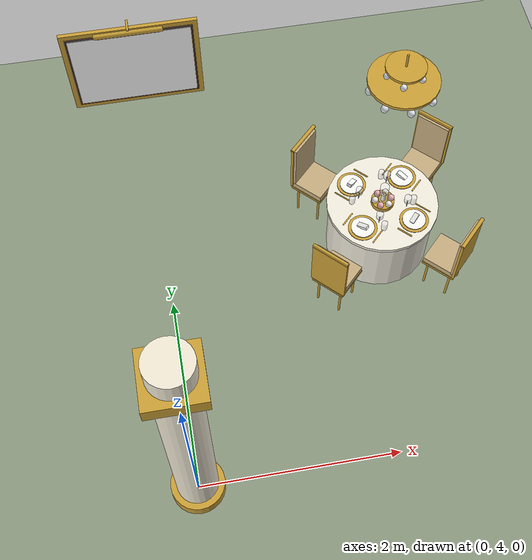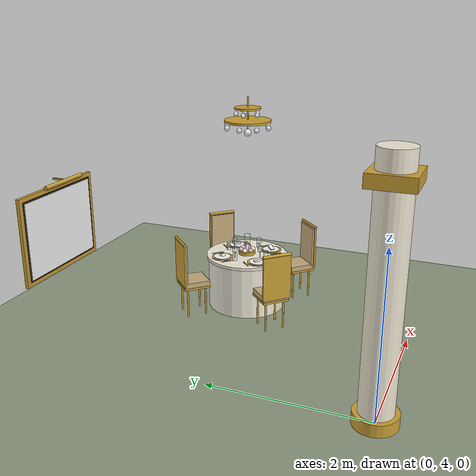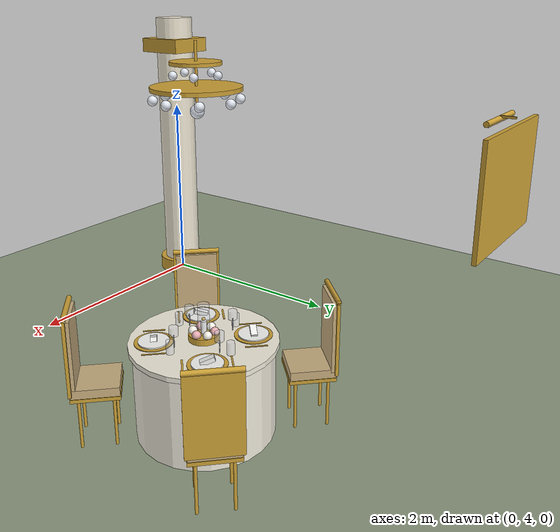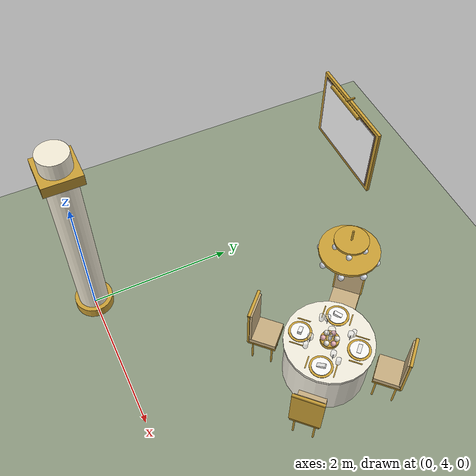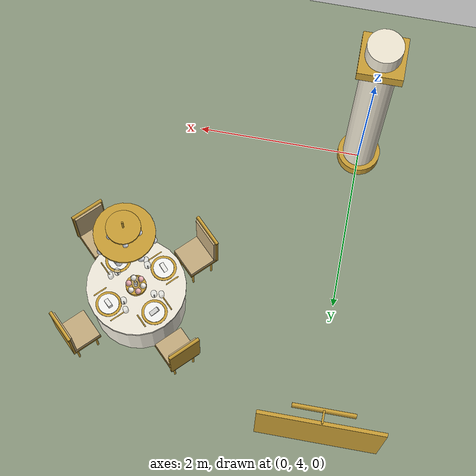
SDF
<sdf version="1.9">
 <world name="dar_tunibot">
  <model name="ground_plane">
   <static>true</static>
   <link name="link">
    <collision name="collision">
     <geometry><plane><normal>0 0 1</normal><size>60 60</size></plane></geometry>
    </collision>
    <visual name="visual">
     <geometry><plane><normal>0 0 1</normal><size>60 60</size></plane></geometry>
     <material><ambient>0.55 0.6 0.5 1</ambient><diffuse>0.55 0.6 0.5 1</diffuse></material>
    </visual>
   </link>
  </model>
  <model name="column_4">
   <static>true</static>
   <pose>0 4 0 0 0 0</pose>
   <link name="link">
    <visual name="base_v">
     <pose>0.000 0.000 0.075 0.0000 0.0000 0.0000</pose>
     <geometry><cylinder><radius>0.260</radius><length>0.150</length></cylinder></geometry>
     <material>
      <ambient>0.8 0.63 0.21 1</ambient>
      <diffuse>0.8 0.63 0.21 1</diffuse>
      <specular>0.1 0.1 0.1 1</specular>
     </material>
    </visual>
    <collision name="base_c">
     <pose>0.000 0.000 0.075 0.0000 0.0000 0.0000</pose>
     <geometry><cylinder><radius>0.260</radius><length>0.150</length></cylinder></geometry>
    </collision>
    <visual name="shaft_v">
     <pose>0.000 0.000 1.500 0.0000 0.0000 0.0000</pose>
     <geometry><cylinder><radius>0.200</radius><length>3.000</length></cylinder></geometry>
     <material>
      <ambient>0.95 0.92 0.84 1</ambient>
      <diffuse>0.95 0.92 0.84 1</diffuse>
      <specular>0.1 0.1 0.1 1</specular>
     </material>
    </visual>
    <collision name="shaft_c">
     <pose>0.000 0.000 1.500 0.0000 0.0000 0.0000</pose>
     <geometry><cylinder><radius>0.200</radius><length>3.000</length></cylinder></geometry>
    </collision>
    <visual name="capital_v">
     <pose>0.000 0.000 2.700 0.0000 0.0000 0.0000</pose>
     <geometry><box><size>0.500 0.500 0.150</size></box></geometry>
     <material>
      <ambient>0.8 0.63 0.21 1</ambient>
      <diffuse>0.8 0.63 0.21 1</diffuse>
      <specular>0.1 0.1 0.1 1</specular>
     </material>
    </visual>
   </link>
  </model>
  <model name="table_2">
   <static>true</static>
   <pose>2.3 6.4 0 0 0 0</pose>
   <link name="link">
    <visual name="cloth_v">
     <pose>0.000 0.000 0.370 0.0000 0.0000 0.0000</pose>
     <geometry><cylinder><radius>0.550</radius><length>0.740</length></cylinder></geometry>
     <material>
      <ambient>0.95 0.93 0.87 1</ambient>
      <diffuse>0.95 0.93 0.87 1</diffuse>
      <specular>0.1 0.1 0.1 1</specular>
     </material>
    </visual>
    <collision name="cloth_c">
     <pose>0.000 0.000 0.370 0.0000 0.0000 0.0000</pose>
     <geometry><cylinder><radius>0.550</radius><length>0.740</length></cylinder></geometry>
    </collision>
    <visual name="drape_v">
     <pose>0.000 0.000 0.750 0.0000 0.0000 0.0000</pose>
     <geometry><cylinder><radius>0.580</radius><length>0.040</length></cylinder></geometry>
     <material>
      <ambient>0.95 0.93 0.87 1</ambient>
      <diffuse>0.95 0.93 0.87 1</diffuse>
      <specular>0.1 0.1 0.1 1</specular>
     </material>
    </visual>
    <visual name="bowl_v">
     <pose>0.000 0.000 0.795 0.0000 0.0000 0.0000</pose>
     <geometry><cylinder><radius>0.120</radius><length>0.050</length></cylinder></geometry>
     <material>
      <ambient>0.8 0.63 0.21 1</ambient>
      <diffuse>0.8 0.63 0.21 1</diffuse>
      <specular>0.1 0.1 0.1 1</specular>
     </material>
    </visual>
    <visual name="bowl_foot_v">
     <pose>0.000 0.000 0.775 0.0000 0.0000 0.0000</pose>
     <geometry><cylinder><radius>0.060</radius><length>0.020</length></cylinder></geometry>
     <material>
      <ambient>0.8 0.63 0.21 1</ambient>
      <diffuse>0.8 0.63 0.21 1</diffuse>
      <specular>0.1 0.1 0.1 1</specular>
     </material>
    </visual>
    <visual name="candle_v">
     <pose>0.000 0.000 0.870 0.0000 0.0000 0.0000</pose>
     <geometry><cylinder><radius>0.022</radius><length>0.100</length></cylinder></geometry>
     <material>
      <ambient>0.98 0.98 0.97 1</ambient>
      <diffuse>0.98 0.98 0.97 1</diffuse>
      <specular>0.1 0.1 0.1 1</specular>
     </material>
    </visual>
    <visual name="flame_v">
     <pose>0.000 0.000 0.935 0.0000 0.0000 0.0000</pose>
     <geometry><sphere><radius>0.014</radius></sphere></geometry>
     <material>
      <ambient>0.8 0.63 0.21 1</ambient>
      <diffuse>0.8 0.63 0.21 1</diffuse>
      <specular>0.1 0.1 0.1 1</specular>
      <emissive>1.0 0.6 0.2 1</emissive>
     </material>
    </visual>
    <visual name="hurricane_v">
     <pose>0.000 0.000 0.940 0.0000 0.0000 0.0000</pose>
     <geometry><cylinder><radius>0.045</radius><length>0.240</length></cylinder></geometry>
     <transparency>0.75</transparency>
     <material>
      <ambient>0.9 0.92 0.96 1</ambient>
      <diffuse>0.9 0.92 0.96 1</diffuse>
      <specular>0.1 0.1 0.1 1</specular>
     </material>
    </visual>
    <visual name="rose0_v">
     <pose>0.085 0.000 0.835 0.0000 0.0000 0.0000</pose>
     <geometry><sphere><radius>0.035</radius></sphere></geometry>
     <material>
      <ambient>0.93 0.7 0.72 1</ambient>
      <diffuse>0.93 0.7 0.72 1</diffuse>
      <specular>0.1 0.1 0.1 1</specular>
     </material>
    </visual>
    <visual name="rose1_v">
     <pose>0.043 0.074 0.835 0.0000 0.0000 0.0000</pose>
     <geometry><sphere><radius>0.035</radius></sphere></geometry>
     <material>
      <ambient>0.97 0.95 0.91 1</ambient>
      <diffuse>0.97 0.95 0.91 1</diffuse>
      <specular>0.1 0.1 0.1 1</specular>
     </material>
    </visual>
    <visual name="rose2_v">
     <pose>-0.042 0.074 0.835 0.0000 0.0000 0.0000</pose>
     <geometry><sphere><radius>0.035</radius></sphere></geometry>
     <material>
      <ambient>0.93 0.7 0.72 1</ambient>
      <diffuse>0.93 0.7 0.72 1</diffuse>
      <specular>0.1 0.1 0.1 1</specular>
     </material>
    </visual>
    <visual name="rose3_v">
     <pose>-0.085 0.000 0.835 0.0000 0.0000 0.0000</pose>
     <geometry><sphere><radius>0.035</radius></sphere></geometry>
     <material>
      <ambient>0.97 0.95 0.91 1</ambient>
      <diffuse>0.97 0.95 0.91 1</diffuse>
      <specular>0.1 0.1 0.1 1</specular>
     </material>
    </visual>
    <visual name="rose4_v">
     <pose>-0.043 -0.074 0.835 0.0000 0.0000 0.0000</pose>
     <geometry><sphere><radius>0.035</radius></sphere></geometry>
     <material>
      <ambient>0.93 0.7 0.72 1</ambient>
      <diffuse>0.93 0.7 0.72 1</diffuse>
      <specular>0.1 0.1 0.1 1</specular>
     </material>
    </visual>
    <visual name="rose5_v">
     <pose>0.043 -0.074 0.835 0.0000 0.0000 0.0000</pose>
     <geometry><sphere><radius>0.035</radius></sphere></geometry>
     <material>
      <ambient>0.97 0.95 0.91 1</ambient>
      <diffuse>0.97 0.95 0.91 1</diffuse>
      <specular>0.1 0.1 0.1 1</specular>
     </material>
    </visual>
    <collision name="seat0_c">
     <pose>0.580 0.580 0.225 0.0000 0.0000 0.0000</pose>
     <geometry><box><size>0.400 0.400 0.450</size></box></geometry>
    </collision>
    <visual name="seat_frame0_v">
     <pose>0.580 0.580 0.430 0.0000 0.0000 0.7854</pose>
     <geometry><box><size>0.370 0.370 0.030</size></box></geometry>
     <material>
      <ambient>0.8 0.63 0.21 1</ambient>
      <diffuse>0.8 0.63 0.21 1</diffuse>
      <specular>0.1 0.1 0.1 1</specular>
     </material>
    </visual>
    <visual name="cushion0_v">
     <pose>0.580 0.580 0.480 0.0000 0.0000 0.7854</pose>
     <geometry><box><size>0.360 0.360 0.070</size></box></geometry>
     <material>
      <ambient>0.78 0.68 0.5 1</ambient>
      <diffuse>0.78 0.68 0.5 1</diffuse>
      <specular>0.1 0.1 0.1 1</specular>
     </material>
    </visual>
    <visual name="back_frame0_v">
     <pose>0.707 0.707 0.780 0.0000 0.0000 0.7854</pose>
     <geometry><box><size>0.025 0.400 0.620</size></box></geometry>
     <material>
      <ambient>0.8 0.63 0.21 1</ambient>
      <diffuse>0.8 0.63 0.21 1</diffuse>
      <specular>0.1 0.1 0.1 1</specular>
     </material>
    </visual>
    <visual name="back0_v">
     <pose>0.697 0.697 0.780 0.0000 0.0000 0.7854</pose>
     <geometry><box><size>0.050 0.360 0.580</size></box></geometry>
     <material>
      <ambient>0.78 0.68 0.5 1</ambient>
      <diffuse>0.78 0.68 0.5 1</diffuse>
      <specular>0.1 0.1 0.1 1</specular>
     </material>
    </visual>
    <visual name="back_top0_v">
     <pose>0.707 0.707 1.090 1.5708 0.0000 0.7854</pose>
     <geometry><cylinder><radius>0.020</radius><length>0.400</length></cylinder></geometry>
     <material>
      <ambient>0.8 0.63 0.21 1</ambient>
      <diffuse>0.8 0.63 0.21 1</diffuse>
      <specular>0.1 0.1 0.1 1</specular>
     </material>
    </visual>
    <visual name="leg0_0_v">
     <pose>0.580 0.396 0.210 0.0000 0.0000 0.7854</pose>
     <geometry><cylinder><radius>0.012</radius><length>0.420</length></cylinder></geometry>
     <material>
      <ambient>0.8 0.63 0.21 1</ambient>
      <diffuse>0.8 0.63 0.21 1</diffuse>
      <specular>0.1 0.1 0.1 1</specular>
     </material>
    </visual>
    <visual name="leg0_1_v">
     <pose>0.396 0.580 0.210 0.0000 0.0000 0.7854</pose>
     <geometry><cylinder><radius>0.012</radius><length>0.420</length></cylinder></geometry>
     <material>
      <ambient>0.8 0.63 0.21 1</ambient>
      <diffuse>0.8 0.63 0.21 1</diffuse>
      <specular>0.1 0.1 0.1 1</specular>
     </material>
    </visual>
    <visual name="leg0_2_v">
     <pose>0.764 0.580 0.210 0.0000 0.0000 0.7854</pose>
     <geometry><cylinder><radius>0.012</radius><length>0.420</length></cylinder></geometry>
     <material>
      <ambient>0.8 0.63 0.21 1</ambient>
      <diffuse>0.8 0.63 0.21 1</diffuse>
      <specular>0.1 0.1 0.1 1</specular>
     </material>
    </visual>
    <visual name="leg0_3_v">
     <pose>0.580 0.764 0.210 0.0000 0.0000 0.7854</pose>
     <geometry><cylinder><radius>0.012</radius><length>0.420</length></cylinder></geometry>
     <material>
      <ambient>0.8 0.63 0.21 1</ambient>
      <diffuse>0.8 0.63 0.21 1</diffuse>
      <specular>0.1 0.1 0.1 1</specular>
     </material>
    </visual>
    <visual name="charger0_v">
     <pose>0.269 0.269 0.773 0.0000 0.0000 0.7854</pose>
     <geometry><cylinder><radius>0.150</radius><length>0.006</length></cylinder></geometry>
     <material>
      <ambient>0.8 0.63 0.21 1</ambient>
      <diffuse>0.8 0.63 0.21 1</diffuse>
      <specular>0.1 0.1 0.1 1</specular>
     </material>
    </visual>
    <visual name="plate0_v">
     <pose>0.269 0.269 0.781 0.0000 0.0000 0.7854</pose>
     <geometry><cylinder><radius>0.120</radius><length>0.010</length></cylinder></geometry>
     <material>
      <ambient>0.98 0.98 0.97 1</ambient>
      <diffuse>0.98 0.98 0.97 1</diffuse>
      <specular>0.1 0.1 0.1 1</specular>
     </material>
    </visual>
    <visual name="napkin0_v">
     <pose>0.269 0.269 0.803 0.3500 0.0000 0.7854</pose>
     <geometry><box><size>0.050 0.110 0.035</size></box></geometry>
     <material>
      <ambient>0.98 0.98 0.97 1</ambient>
      <diffuse>0.98 0.98 0.97 1</diffuse>
      <specular>0.1 0.1 0.1 1</specular>
     </material>
    </visual>
    <visual name="fork0_v">
     <pose>0.396 0.141 0.772 0.0000 0.0000 0.7854</pose>
     <geometry><box><size>0.170 0.014 0.004</size></box></geometry>
     <material>
      <ambient>0.8 0.63 0.21 1</ambient>
      <diffuse>0.8 0.63 0.21 1</diffuse>
      <specular>0.1 0.1 0.1 1</specular>
     </material>
    </visual>
    <visual name="knife0_v">
     <pose>0.141 0.396 0.772 0.0000 0.0000 0.7854</pose>
     <geometry><box><size>0.180 0.012 0.004</size></box></geometry>
     <material>
      <ambient>0.8 0.63 0.21 1</ambient>
      <diffuse>0.8 0.63 0.21 1</diffuse>
      <specular>0.1 0.1 0.1 1</specular>
     </material>
    </visual>
    <visual name="wine_stem0_v">
     <pose>0.092 0.233 0.820 0.0000 0.0000 0.7854</pose>
     <geometry><cylinder><radius>0.004</radius><length>0.100</length></cylinder></geometry>
     <material>
      <ambient>0.9 0.92 0.96 1</ambient>
      <diffuse>0.9 0.92 0.96 1</diffuse>
      <specular>0.1 0.1 0.1 1</specular>
     </material>
    </visual>
    <visual name="wine_bowl0_v">
     <pose>0.092 0.233 0.905 0.0000 0.0000 0.7854</pose>
     <geometry><cylinder><radius>0.035</radius><length>0.070</length></cylinder></geometry>
     <transparency>0.6</transparency>
     <material>
      <ambient>0.9 0.92 0.96 1</ambient>
      <diffuse>0.9 0.92 0.96 1</diffuse>
      <specular>0.1 0.1 0.1 1</specular>
     </material>
    </visual>
    <visual name="water0_v">
     <pose>0.057 0.311 0.820 0.0000 0.0000 0.7854</pose>
     <geometry><cylinder><radius>0.030</radius><length>0.100</length></cylinder></geometry>
     <transparency>0.6</transparency>
     <material>
      <ambient>0.9 0.92 0.96 1</ambient>
      <diffuse>0.9 0.92 0.96 1</diffuse>
      <specular>0.1 0.1 0.1 1</specular>
     </material>
    </visual>
    <collision name="seat1_c">
     <pose>-0.580 0.580 0.225 0.0000 0.0000 0.0000</pose>
     <geometry><box><size>0.400 0.400 0.450</size></box></geometry>
    </collision>
    <visual name="seat_frame1_v">
     <pose>-0.580 0.580 0.430 0.0000 0.0000 2.3562</pose>
     <geometry><box><size>0.370 0.370 0.030</size></box></geometry>
     <material>
      <ambient>0.8 0.63 0.21 1</ambient>
      <diffuse>0.8 0.63 0.21 1</diffuse>
      <specular>0.1 0.1 0.1 1</specular>
     </material>
    </visual>
    <visual name="cushion1_v">
     <pose>-0.580 0.580 0.480 0.0000 0.0000 2.3562</pose>
     <geometry><box><size>0.360 0.360 0.070</size></box></geometry>
     <material>
      <ambient>0.78 0.68 0.5 1</ambient>
      <diffuse>0.78 0.68 0.5 1</diffuse>
      <specular>0.1 0.1 0.1 1</specular>
     </material>
    </visual>
    <visual name="back_frame1_v">
     <pose>-0.707 0.707 0.780 0.0000 0.0000 2.3562</pose>
     <geometry><box><size>0.025 0.400 0.620</size></box></geometry>
     <material>
      <ambient>0.8 0.63 0.21 1</ambient>
      <diffuse>0.8 0.63 0.21 1</diffuse>
      <specular>0.1 0.1 0.1 1</specular>
     </material>
    </visual>
    <visual name="back1_v">
     <pose>-0.697 0.697 0.780 0.0000 0.0000 2.3562</pose>
     <geometry><box><size>0.050 0.360 0.580</size></box></geometry>
     <material>
      <ambient>0.78 0.68 0.5 1</ambient>
      <diffuse>0.78 0.68 0.5 1</diffuse>
      <specular>0.1 0.1 0.1 1</specular>
     </material>
    </visual>
    <visual name="back_top1_v">
     <pose>-0.707 0.707 1.090 1.5708 0.0000 2.3562</pose>
     <geometry><cylinder><radius>0.020</radius><length>0.400</length></cylinder></geometry>
     <material>
      <ambient>0.8 0.63 0.21 1</ambient>
      <diffuse>0.8 0.63 0.21 1</diffuse>
      <specular>0.1 0.1 0.1 1</specular>
     </material>
    </visual>
    <visual name="leg1_0_v">
     <pose>-0.396 0.580 0.210 0.0000 0.0000 2.3562</pose>
     <geometry><cylinder><radius>0.012</radius><length>0.420</length></cylinder></geometry>
     <material>
      <ambient>0.8 0.63 0.21 1</ambient>
      <diffuse>0.8 0.63 0.21 1</diffuse>
      <specular>0.1 0.1 0.1 1</specular>
     </material>
    </visual>
    <visual name="leg1_1_v">
     <pose>-0.580 0.396 0.210 0.0000 0.0000 2.3562</pose>
     <geometry><cylinder><radius>0.012</radius><length>0.420</length></cylinder></geometry>
     <material>
      <ambient>0.8 0.63 0.21 1</ambient>
      <diffuse>0.8 0.63 0.21 1</diffuse>
      <specular>0.1 0.1 0.1 1</specular>
     </material>
    </visual>
    <visual name="leg1_2_v">
     <pose>-0.580 0.764 0.210 0.0000 0.0000 2.3562</pose>
     <geometry><cylinder><radius>0.012</radius><length>0.420</length></cylinder></geometry>
     <material>
      <ambient>0.8 0.63 0.21 1</ambient>
      <diffuse>0.8 0.63 0.21 1</diffuse>
      <specular>0.1 0.1 0.1 1</specular>
     </material>
    </visual>
    <visual name="leg1_3_v">
     <pose>-0.764 0.580 0.210 0.0000 0.0000 2.3562</pose>
     <geometry><cylinder><radius>0.012</radius><length>0.420</length></cylinder></geometry>
     <material>
      <ambient>0.8 0.63 0.21 1</ambient>
      <diffuse>0.8 0.63 0.21 1</diffuse>
      <specular>0.1 0.1 0.1 1</specular>
     </material>
    </visual>
    <visual name="charger1_v">
     <pose>-0.269 0.269 0.773 0.0000 0.0000 2.3562</pose>
     <geometry><cylinder><radius>0.150</radius><length>0.006</length></cylinder></geometry>
     <material>
      <ambient>0.8 0.63 0.21 1</ambient>
      <diffuse>0.8 0.63 0.21 1</diffuse>
      <specular>0.1 0.1 0.1 1</specular>
     </material>
    </visual>
    <visual name="plate1_v">
     <pose>-0.269 0.269 0.781 0.0000 0.0000 2.3562</pose>
     <geometry><cylinder><radius>0.120</radius><length>0.010</length></cylinder></geometry>
     <material>
      <ambient>0.98 0.98 0.97 1</ambient>
      <diffuse>0.98 0.98 0.97 1</diffuse>
      <specular>0.1 0.1 0.1 1</specular>
     </material>
    </visual>
    <visual name="napkin1_v">
     <pose>-0.269 0.269 0.803 0.3500 0.0000 2.3562</pose>
     <geometry><box><size>0.050 0.110 0.035</size></box></geometry>
     <material>
      <ambient>0.98 0.98 0.97 1</ambient>
      <diffuse>0.98 0.98 0.97 1</diffuse>
      <specular>0.1 0.1 0.1 1</specular>
     </material>
    </visual>
    <visual name="fork1_v">
     <pose>-0.141 0.396 0.772 0.0000 0.0000 2.3562</pose>
     <geometry><box><size>0.170 0.014 0.004</size></box></geometry>
     <material>
      <ambient>0.8 0.63 0.21 1</ambient>
      <diffuse>0.8 0.63 0.21 1</diffuse>
      <specular>0.1 0.1 0.1 1</specular>
     </material>
    </visual>
    <visual name="knife1_v">
     <pose>-0.396 0.141 0.772 0.0000 0.0000 2.3562</pose>
     <geometry><box><size>0.180 0.012 0.004</size></box></geometry>
     <material>
      <ambient>0.8 0.63 0.21 1</ambient>
      <diffuse>0.8 0.63 0.21 1</diffuse>
      <specular>0.1 0.1 0.1 1</specular>
     </material>
    </visual>
    <visual name="wine_stem1_v">
     <pose>-0.233 0.092 0.820 0.0000 0.0000 2.3562</pose>
     <geometry><cylinder><radius>0.004</radius><length>0.100</length></cylinder></geometry>
     <material>
      <ambient>0.9 0.92 0.96 1</ambient>
      <diffuse>0.9 0.92 0.96 1</diffuse>
      <specular>0.1 0.1 0.1 1</specular>
     </material>
    </visual>
    <visual name="wine_bowl1_v">
     <pose>-0.233 0.092 0.905 0.0000 0.0000 2.3562</pose>
     <geometry><cylinder><radius>0.035</radius><length>0.070</length></cylinder></geometry>
     <transparency>0.6</transparency>
     <material>
      <ambient>0.9 0.92 0.96 1</ambient>
      <diffuse>0.9 0.92 0.96 1</diffuse>
      <specular>0.1 0.1 0.1 1</specular>
     </material>
    </visual>
    <visual name="water1_v">
     <pose>-0.311 0.057 0.820 0.0000 0.0000 2.3562</pose>
     <geometry><cylinder><radius>0.030</radius><length>0.100</length></cylinder></geometry>
     <transparency>0.6</transparency>
     <material>
      <ambient>0.9 0.92 0.96 1</ambient>
      <diffuse>0.9 0.92 0.96 1</diffuse>
      <specular>0.1 0.1 0.1 1</specular>
     </material>
    </visual>
    <collision name="seat2_c">
     <pose>-0.580 -0.580 0.225 0.0000 0.0000 0.0000</pose>
     <geometry><box><size>0.400 0.400 0.450</size></box></geometry>
    </collision>
    <visual name="seat_frame2_v">
     <pose>-0.580 -0.580 0.430 0.0000 0.0000 3.9270</pose>
     <geometry><box><size>0.370 0.370 0.030</size></box></geometry>
     <material>
      <ambient>0.8 0.63 0.21 1</ambient>
      <diffuse>0.8 0.63 0.21 1</diffuse>
      <specular>0.1 0.1 0.1 1</specular>
     </material>
    </visual>
    <visual name="cushion2_v">
     <pose>-0.580 -0.580 0.480 0.0000 0.0000 3.9270</pose>
     <geometry><box><size>0.360 0.360 0.070</size></box></geometry>
     <material>
      <ambient>0.78 0.68 0.5 1</ambient>
      <diffuse>0.78 0.68 0.5 1</diffuse>
      <specular>0.1 0.1 0.1 1</specular>
     </material>
    </visual>
    <visual name="back_frame2_v">
     <pose>-0.707 -0.707 0.780 0.0000 0.0000 3.9270</pose>
     <geometry><box><size>0.025 0.400 0.620</size></box></geometry>
     <material>
      <ambient>0.8 0.63 0.21 1</ambient>
      <diffuse>0.8 0.63 0.21 1</diffuse>
      <specular>0.1 0.1 0.1 1</specular>
     </material>
    </visual>
    <visual name="back2_v">
     <pose>-0.697 -0.697 0.780 0.0000 0.0000 3.9270</pose>
     <geometry><box><size>0.050 0.360 0.580</size></box></geometry>
     <material>
      <ambient>0.78 0.68 0.5 1</ambient>
      <diffuse>0.78 0.68 0.5 1</diffuse>
      <specular>0.1 0.1 0.1 1</specular>
     </material>
    </visual>
    <visual name="back_top2_v">
     <pose>-0.707 -0.707 1.090 1.5708 0.0000 3.9270</pose>
     <geometry><cylinder><radius>0.020</radius><length>0.400</length></cylinder></geometry>
     <material>
      <ambient>0.8 0.63 0.21 1</ambient>
      <diffuse>0.8 0.63 0.21 1</diffuse>
      <specular>0.1 0.1 0.1 1</specular>
     </material>
    </visual>
    <visual name="leg2_0_v">
     <pose>-0.580 -0.396 0.210 0.0000 0.0000 3.9270</pose>
     <geometry><cylinder><radius>0.012</radius><length>0.420</length></cylinder></geometry>
     <material>
      <ambient>0.8 0.63 0.21 1</ambient>
      <diffuse>0.8 0.63 0.21 1</diffuse>
      <specular>0.1 0.1 0.1 1</specular>
     </material>
    </visual>
    <visual name="leg2_1_v">
     <pose>-0.396 -0.580 0.210 0.0000 0.0000 3.9270</pose>
     <geometry><cylinder><radius>0.012</radius><length>0.420</length></cylinder></geometry>
     <material>
      <ambient>0.8 0.63 0.21 1</ambient>
      <diffuse>0.8 0.63 0.21 1</diffuse>
      <specular>0.1 0.1 0.1 1</specular>
     </material>
    </visual>
    <visual name="leg2_2_v">
     <pose>-0.764 -0.580 0.210 0.0000 0.0000 3.9270</pose>
     <geometry><cylinder><radius>0.012</radius><length>0.420</length></cylinder></geometry>
     <material>
      <ambient>0.8 0.63 0.21 1</ambient>
      <diffuse>0.8 0.63 0.21 1</diffuse>
      <specular>0.1 0.1 0.1 1</specular>
     </material>
    </visual>
    <visual name="leg2_3_v">
     <pose>-0.580 -0.764 0.210 0.0000 0.0000 3.9270</pose>
     <geometry><cylinder><radius>0.012</radius><length>0.420</length></cylinder></geometry>
     <material>
      <ambient>0.8 0.63 0.21 1</ambient>
      <diffuse>0.8 0.63 0.21 1</diffuse>
      <specular>0.1 0.1 0.1 1</specular>
     </material>
    </visual>
    <visual name="charger2_v">
     <pose>-0.269 -0.269 0.773 0.0000 0.0000 3.9270</pose>
     <geometry><cylinder><radius>0.150</radius><length>0.006</length></cylinder></geometry>
     <material>
      <ambient>0.8 0.63 0.21 1</ambient>
      <diffuse>0.8 0.63 0.21 1</diffuse>
      <specular>0.1 0.1 0.1 1</specular>
     </material>
    </visual>
    <visual name="plate2_v">
     <pose>-0.269 -0.269 0.781 0.0000 0.0000 3.9270</pose>
     <geometry><cylinder><radius>0.120</radius><length>0.010</length></cylinder></geometry>
     <material>
      <ambient>0.98 0.98 0.97 1</ambient>
      <diffuse>0.98 0.98 0.97 1</diffuse>
      <specular>0.1 0.1 0.1 1</specular>
     </material>
    </visual>
    <visual name="napkin2_v">
     <pose>-0.269 -0.269 0.803 0.3500 0.0000 3.9270</pose>
     <geometry><box><size>0.050 0.110 0.035</size></box></geometry>
     <material>
      <ambient>0.98 0.98 0.97 1</ambient>
      <diffuse>0.98 0.98 0.97 1</diffuse>
      <specular>0.1 0.1 0.1 1</specular>
     </material>
    </visual>
    <visual name="fork2_v">
     <pose>-0.396 -0.141 0.772 0.0000 0.0000 3.9270</pose>
     <geometry><box><size>0.170 0.014 0.004</size></box></geometry>
     <material>
      <ambient>0.8 0.63 0.21 1</ambient>
      <diffuse>0.8 0.63 0.21 1</diffuse>
      <specular>0.1 0.1 0.1 1</specular>
     </material>
    </visual>
    <visual name="knife2_v">
     <pose>-0.141 -0.396 0.772 0.0000 0.0000 3.9270</pose>
     <geometry><box><size>0.180 0.012 0.004</size></box></geometry>
     <material>
      <ambient>0.8 0.63 0.21 1</ambient>
      <diffuse>0.8 0.63 0.21 1</diffuse>
      <specular>0.1 0.1 0.1 1</specular>
     </material>
    </visual>
    <visual name="wine_stem2_v">
     <pose>-0.092 -0.233 0.820 0.0000 0.0000 3.9270</pose>
     <geometry><cylinder><radius>0.004</radius><length>0.100</length></cylinder></geometry>
     <material>
      <ambient>0.9 0.92 0.96 1</ambient>
      <diffuse>0.9 0.92 0.96 1</diffuse>
      <specular>0.1 0.1 0.1 1</specular>
     </material>
    </visual>
    <visual name="wine_bowl2_v">
     <pose>-0.092 -0.233 0.905 0.0000 0.0000 3.9270</pose>
     <geometry><cylinder><radius>0.035</radius><length>0.070</length></cylinder></geometry>
     <transparency>0.6</transparency>
     <material>
      <ambient>0.9 0.92 0.96 1</ambient>
      <diffuse>0.9 0.92 0.96 1</diffuse>
      <specular>0.1 0.1 0.1 1</specular>
     </material>
    </visual>
    <visual name="water2_v">
     <pose>-0.057 -0.311 0.820 0.0000 0.0000 3.9270</pose>
     <geometry><cylinder><radius>0.030</radius><length>0.100</length></cylinder></geometry>
     <transparency>0.6</transparency>
     <material>
      <ambient>0.9 0.92 0.96 1</ambient>
      <diffuse>0.9 0.92 0.96 1</diffuse>
      <specular>0.1 0.1 0.1 1</specular>
     </material>
    </visual>
    <collision name="seat3_c">
     <pose>0.580 -0.580 0.225 0.0000 0.0000 0.0000</pose>
     <geometry><box><size>0.400 0.400 0.450</size></box></geometry>
    </collision>
    <visual name="seat_frame3_v">
     <pose>0.580 -0.580 0.430 0.0000 0.0000 5.4978</pose>
     <geometry><box><size>0.370 0.370 0.030</size></box></geometry>
     <material>
      <ambient>0.8 0.63 0.21 1</ambient>
      <diffuse>0.8 0.63 0.21 1</diffuse>
      <specular>0.1 0.1 0.1 1</specular>
     </material>
    </visual>
    <visual name="cushion3_v">
     <pose>0.580 -0.580 0.480 0.0000 0.0000 5.4978</pose>
     <geometry><box><size>0.360 0.360 0.070</size></box></geometry>
     <material>
      <ambient>0.78 0.68 0.5 1</ambient>
      <diffuse>0.78 0.68 0.5 1</diffuse>
      <specular>0.1 0.1 0.1 1</specular>
     </material>
    </visual>
    <visual name="back_frame3_v">
     <pose>0.707 -0.707 0.780 0.0000 0.0000 5.4978</pose>
     <geometry><box><size>0.025 0.400 0.620</size></box></geometry>
     <material>
      <ambient>0.8 0.63 0.21 1</ambient>
      <diffuse>0.8 0.63 0.21 1</diffuse>
      <specular>0.1 0.1 0.1 1</specular>
     </material>
    </visual>
    <visual name="back3_v">
     <pose>0.697 -0.697 0.780 0.0000 0.0000 5.4978</pose>
     <geometry><box><size>0.050 0.360 0.580</size></box></geometry>
     <material>
      <ambient>0.78 0.68 0.5 1</ambient>
      <diffuse>0.78 0.68 0.5 1</diffuse>
      <specular>0.1 0.1 0.1 1</specular>
     </material>
    </visual>
    <visual name="back_top3_v">
     <pose>0.707 -0.707 1.090 1.5708 0.0000 5.4978</pose>
     <geometry><cylinder><radius>0.020</radius><length>0.400</length></cylinder></geometry>
     <material>
      <ambient>0.8 0.63 0.21 1</ambient>
      <diffuse>0.8 0.63 0.21 1</diffuse>
      <specular>0.1 0.1 0.1 1</specular>
     </material>
    </visual>
    <visual name="leg3_0_v">
     <pose>0.396 -0.580 0.210 0.0000 0.0000 5.4978</pose>
     <geometry><cylinder><radius>0.012</radius><length>0.420</length></cylinder></geometry>
     <material>
      <ambient>0.8 0.63 0.21 1</ambient>
      <diffuse>0.8 0.63 0.21 1</diffuse>
      <specular>0.1 0.1 0.1 1</specular>
     </material>
    </visual>
    <visual name="leg3_1_v">
     <pose>0.580 -0.396 0.210 0.0000 0.0000 5.4978</pose>
     <geometry><cylinder><radius>0.012</radius><length>0.420</length></cylinder></geometry>
     <material>
      <ambient>0.8 0.63 0.21 1</ambient>
      <diffuse>0.8 0.63 0.21 1</diffuse>
      <specular>0.1 0.1 0.1 1</specular>
     </material>
    </visual>
    <visual name="leg3_2_v">
     <pose>0.580 -0.764 0.210 0.0000 0.0000 5.4978</pose>
     <geometry><cylinder><radius>0.012</radius><length>0.420</length></cylinder></geometry>
     <material>
      <ambient>0.8 0.63 0.21 1</ambient>
      <diffuse>0.8 0.63 0.21 1</diffuse>
      <specular>0.1 0.1 0.1 1</specular>
     </material>
    </visual>
    <visual name="leg3_3_v">
     <pose>0.764 -0.580 0.210 0.0000 0.0000 5.4978</pose>
     <geometry><cylinder><radius>0.012</radius><length>0.420</length></cylinder></geometry>
     <material>
      <ambient>0.8 0.63 0.21 1</ambient>
      <diffuse>0.8 0.63 0.21 1</diffuse>
      <specular>0.1 0.1 0.1 1</specular>
     </material>
    </visual>
    <visual name="charger3_v">
     <pose>0.269 -0.269 0.773 0.0000 0.0000 5.4978</pose>
     <geometry><cylinder><radius>0.150</radius><length>0.006</length></cylinder></geometry>
     <material>
      <ambient>0.8 0.63 0.21 1</ambient>
      <diffuse>0.8 0.63 0.21 1</diffuse>
      <specular>0.1 0.1 0.1 1</specular>
     </material>
    </visual>
    <visual name="plate3_v">
     <pose>0.269 -0.269 0.781 0.0000 0.0000 5.4978</pose>
     <geometry><cylinder><radius>0.120</radius><length>0.010</length></cylinder></geometry>
     <material>
      <ambient>0.98 0.98 0.97 1</ambient>
      <diffuse>0.98 0.98 0.97 1</diffuse>
      <specular>0.1 0.1 0.1 1</specular>
     </material>
    </visual>
    <visual name="napkin3_v">
     <pose>0.269 -0.269 0.803 0.3500 0.0000 5.4978</pose>
     <geometry><box><size>0.050 0.110 0.035</size></box></geometry>
     <material>
      <ambient>0.98 0.98 0.97 1</ambient>
      <diffuse>0.98 0.98 0.97 1</diffuse>
      <specular>0.1 0.1 0.1 1</specular>
     </material>
    </visual>
    <visual name="fork3_v">
     <pose>0.141 -0.396 0.772 0.0000 0.0000 5.4978</pose>
     <geometry><box><size>0.170 0.014 0.004</size></box></geometry>
     <material>
      <ambient>0.8 0.63 0.21 1</ambient>
      <diffuse>0.8 0.63 0.21 1</diffuse>
      <specular>0.1 0.1 0.1 1</specular>
     </material>
    </visual>
    <visual name="knife3_v">
     <pose>0.396 -0.141 0.772 0.0000 0.0000 5.4978</pose>
     <geometry><box><size>0.180 0.012 0.004</size></box></geometry>
     <material>
      <ambient>0.8 0.63 0.21 1</ambient>
      <diffuse>0.8 0.63 0.21 1</diffuse>
      <specular>0.1 0.1 0.1 1</specular>
     </material>
    </visual>
    <visual name="wine_stem3_v">
     <pose>0.233 -0.092 0.820 0.0000 0.0000 5.4978</pose>
     <geometry><cylinder><radius>0.004</radius><length>0.100</length></cylinder></geometry>
     <material>
      <ambient>0.9 0.92 0.96 1</ambient>
      <diffuse>0.9 0.92 0.96 1</diffuse>
      <specular>0.1 0.1 0.1 1</specular>
     </material>
    </visual>
    <visual name="wine_bowl3_v">
     <pose>0.233 -0.092 0.905 0.0000 0.0000 5.4978</pose>
     <geometry><cylinder><radius>0.035</radius><length>0.070</length></cylinder></geometry>
     <transparency>0.6</transparency>
     <material>
      <ambient>0.9 0.92 0.96 1</ambient>
      <diffuse>0.9 0.92 0.96 1</diffuse>
      <specular>0.1 0.1 0.1 1</specular>
     </material>
    </visual>
    <visual name="water3_v">
     <pose>0.311 -0.057 0.820 0.0000 0.0000 5.4978</pose>
     <geometry><cylinder><radius>0.030</radius><length>0.100</length></cylinder></geometry>
     <transparency>0.6</transparency>
     <material>
      <ambient>0.9 0.92 0.96 1</ambient>
      <diffuse>0.9 0.92 0.96 1</diffuse>
      <specular>0.1 0.1 0.1 1</specular>
     </material>
    </visual>
    <visual name="chand_rod_v">
     <pose>0.000 0.000 2.750 0.0000 0.0000 0.0000</pose>
     <geometry><cylinder><radius>0.010</radius><length>0.500</length></cylinder></geometry>
     <material>
      <ambient>0.8 0.63 0.21 1</ambient>
      <diffuse>0.8 0.63 0.21 1</diffuse>
      <specular>0.1 0.1 0.1 1</specular>
     </material>
    </visual>
    <visual name="chand_ring_v">
     <pose>0.000 0.000 2.680 0.0000 0.0000 0.0000</pose>
     <geometry><cylinder><radius>0.320</radius><length>0.030</length></cylinder></geometry>
     <material>
      <ambient>0.8 0.63 0.21 1</ambient>
      <diffuse>0.8 0.63 0.21 1</diffuse>
      <specular>0.1 0.1 0.1 1</specular>
     </material>
    </visual>
    <visual name="chand_ring_top_v">
     <pose>0.000 0.000 2.850 0.0000 0.0000 0.0000</pose>
     <geometry><cylinder><radius>0.180</radius><length>0.025</length></cylinder></geometry>
     <material>
      <ambient>0.8 0.63 0.21 1</ambient>
      <diffuse>0.8 0.63 0.21 1</diffuse>
      <specular>0.1 0.1 0.1 1</specular>
     </material>
    </visual>
    <visual name="chand_drop_v">
     <pose>0.000 0.000 2.520 0.0000 0.0000 0.0000</pose>
     <geometry><sphere><radius>0.050</radius></sphere></geometry>
     <material>
      <ambient>0.9 0.92 0.96 1</ambient>
      <diffuse>0.9 0.92 0.96 1</diffuse>
      <specular>0.1 0.1 0.1 1</specular>
      <emissive>0.55 0.52 0.45 1</emissive>
     </material>
    </visual>
    <visual name="crystal0_0_v">
     <pose>0.300 0.000 2.600 0.0000 0.0000 0.0000</pose>
     <geometry><sphere><radius>0.035</radius></sphere></geometry>
     <material>
      <ambient>0.9 0.92 0.96 1</ambient>
      <diffuse>0.9 0.92 0.96 1</diffuse>
      <specular>0.1 0.1 0.1 1</specular>
      <emissive>0.55 0.52 0.45 1</emissive>
     </material>
    </visual>
    <visual name="crystal0_1_v">
     <pose>0.212 0.212 2.600 0.0000 0.0000 0.0000</pose>
     <geometry><sphere><radius>0.035</radius></sphere></geometry>
     <material>
      <ambient>0.9 0.92 0.96 1</ambient>
      <diffuse>0.9 0.92 0.96 1</diffuse>
      <specular>0.1 0.1 0.1 1</specular>
      <emissive>0.55 0.52 0.45 1</emissive>
     </material>
    </visual>
    <visual name="crystal0_2_v">
     <pose>0.000 0.300 2.600 0.0000 0.0000 0.0000</pose>
     <geometry><sphere><radius>0.035</radius></sphere></geometry>
     <material>
      <ambient>0.9 0.92 0.96 1</ambient>
      <diffuse>0.9 0.92 0.96 1</diffuse>
      <specular>0.1 0.1 0.1 1</specular>
      <emissive>0.55 0.52 0.45 1</emissive>
     </material>
    </visual>
    <visual name="crystal0_3_v">
     <pose>-0.212 0.212 2.600 0.0000 0.0000 0.0000</pose>
     <geometry><sphere><radius>0.035</radius></sphere></geometry>
     <material>
      <ambient>0.9 0.92 0.96 1</ambient>
      <diffuse>0.9 0.92 0.96 1</diffuse>
      <specular>0.1 0.1 0.1 1</specular>
      <emissive>0.55 0.52 0.45 1</emissive>
     </material>
    </visual>
    <visual name="crystal0_4_v">
     <pose>-0.300 0.000 2.600 0.0000 0.0000 0.0000</pose>
     <geometry><sphere><radius>0.035</radius></sphere></geometry>
     <material>
      <ambient>0.9 0.92 0.96 1</ambient>
      <diffuse>0.9 0.92 0.96 1</diffuse>
      <specular>0.1 0.1 0.1 1</specular>
      <emissive>0.55 0.52 0.45 1</emissive>
     </material>
    </visual>
    <visual name="crystal0_5_v">
     <pose>-0.212 -0.212 2.600 0.0000 0.0000 0.0000</pose>
     <geometry><sphere><radius>0.035</radius></sphere></geometry>
     <material>
      <ambient>0.9 0.92 0.96 1</ambient>
      <diffuse>0.9 0.92 0.96 1</diffuse>
      <specular>0.1 0.1 0.1 1</specular>
      <emissive>0.55 0.52 0.45 1</emissive>
     </material>
    </visual>
    <visual name="crystal0_6_v">
     <pose>-0.000 -0.300 2.600 0.0000 0.0000 0.0000</pose>
     <geometry><sphere><radius>0.035</radius></sphere></geometry>
     <material>
      <ambient>0.9 0.92 0.96 1</ambient>
      <diffuse>0.9 0.92 0.96 1</diffuse>
      <specular>0.1 0.1 0.1 1</specular>
      <emissive>0.55 0.52 0.45 1</emissive>
     </material>
    </visual>
    <visual name="crystal0_7_v">
     <pose>0.212 -0.212 2.600 0.0000 0.0000 0.0000</pose>
     <geometry><sphere><radius>0.035</radius></sphere></geometry>
     <material>
      <ambient>0.9 0.92 0.96 1</ambient>
      <diffuse>0.9 0.92 0.96 1</diffuse>
      <specular>0.1 0.1 0.1 1</specular>
      <emissive>0.55 0.52 0.45 1</emissive>
     </material>
    </visual>
    <visual name="crystal1_0_v">
     <pose>0.129 0.094 2.770 0.0000 0.0000 0.0000</pose>
     <geometry><sphere><radius>0.030</radius></sphere></geometry>
     <material>
      <ambient>0.9 0.92 0.96 1</ambient>
      <diffuse>0.9 0.92 0.96 1</diffuse>
      <specular>0.1 0.1 0.1 1</specular>
      <emissive>0.55 0.52 0.45 1</emissive>
     </material>
    </visual>
    <visual name="crystal1_1_v">
     <pose>-0.049 0.152 2.770 0.0000 0.0000 0.0000</pose>
     <geometry><sphere><radius>0.030</radius></sphere></geometry>
     <material>
      <ambient>0.9 0.92 0.96 1</ambient>
      <diffuse>0.9 0.92 0.96 1</diffuse>
      <specular>0.1 0.1 0.1 1</specular>
      <emissive>0.55 0.52 0.45 1</emissive>
     </material>
    </visual>
    <visual name="crystal1_2_v">
     <pose>-0.160 0.000 2.770 0.0000 0.0000 0.0000</pose>
     <geometry><sphere><radius>0.030</radius></sphere></geometry>
     <material>
      <ambient>0.9 0.92 0.96 1</ambient>
      <diffuse>0.9 0.92 0.96 1</diffuse>
      <specular>0.1 0.1 0.1 1</specular>
      <emissive>0.55 0.52 0.45 1</emissive>
     </material>
    </visual>
    <visual name="crystal1_3_v">
     <pose>-0.049 -0.152 2.770 0.0000 0.0000 0.0000</pose>
     <geometry><sphere><radius>0.030</radius></sphere></geometry>
     <material>
      <ambient>0.9 0.92 0.96 1</ambient>
      <diffuse>0.9 0.92 0.96 1</diffuse>
      <specular>0.1 0.1 0.1 1</specular>
      <emissive>0.55 0.52 0.45 1</emissive>
     </material>
    </visual>
    <visual name="crystal1_4_v">
     <pose>0.129 -0.094 2.770 0.0000 0.0000 0.0000</pose>
     <geometry><sphere><radius>0.030</radius></sphere></geometry>
     <material>
      <ambient>0.9 0.92 0.96 1</ambient>
      <diffuse>0.9 0.92 0.96 1</diffuse>
      <specular>0.1 0.1 0.1 1</specular>
      <emissive>0.55 0.52 0.45 1</emissive>
     </material>
    </visual>
   </link>
  </model>
  <model name="art_north_mid">
   <static>true</static>
   <pose>0.0 7.9 0 0 0 -1.5707963267948966</pose>
   <link name="link">
    <visual name="frame_v">
     <pose>0.030 0.000 1.700 0.0000 0.0000 0.0000</pose>
     <geometry><box><size>0.040 1.340 1.040</size></box></geometry>
     <material>
      <ambient>0.8 0.63 0.21 1</ambient>
      <diffuse>0.8 0.63 0.21 1</diffuse>
      <specular>0.1 0.1 0.1 1</specular>
     </material>
    </visual>
    <visual name="liner_v">
     <pose>0.052 0.000 1.700 0.0000 0.0000 0.0000</pose>
     <geometry><box><size>0.010 1.240 0.940</size></box></geometry>
     <material>
      <ambient>0.2 0.12 0.07 1</ambient>
      <diffuse>0.2 0.12 0.07 1</diffuse>
      <specular>0.1 0.1 0.1 1</specular>
     </material>
    </visual>
    <visual name="canvas_v">
     <pose>0.057 0.000 1.700 0.0000 0.0000 0.0000</pose>
     <geometry><box><size>0.010 1.200 0.900</size></box></geometry>
     <material>
      <ambient>1 1 1 1</ambient>
      <diffuse>1 1 1 1</diffuse>
      <specular>0.05 0.05 0.05 1</specular>
      <pbr>
       <metal>
        <albedo_map>model://dar_art/materials/textures/sidi_bou_said_sunset.png</albedo_map>
        <roughness>0.9</roughness>
        <metalness>0.0</metalness>
       </metal>
      </pbr>
     </material>
    </visual>
    <visual name="lamp_arm_v">
     <pose>0.080 0.000 2.290 0.0000 0.0000 0.0000</pose>
     <geometry><box><size>0.140 0.020 0.020</size></box></geometry>
     <material>
      <ambient>0.8 0.63 0.21 1</ambient>
      <diffuse>0.8 0.63 0.21 1</diffuse>
      <specular>0.1 0.1 0.1 1</specular>
     </material>
    </visual>
    <visual name="lamp_v">
     <pose>0.150 0.000 2.270 1.5708 0.0000 0.0000</pose>
     <geometry><cylinder><radius>0.025</radius><length>0.660</length></cylinder></geometry>
     <material>
      <ambient>0.8 0.63 0.21 1</ambient>
      <diffuse>0.8 0.63 0.21 1</diffuse>
      <specular>0.1 0.1 0.1 1</specular>
     </material>
    </visual>
    <visual name="lamp_glow_v">
     <pose>0.150 0.000 2.245 0.0000 0.0000 0.0000</pose>
     <geometry><box><size>0.020 0.600 0.010</size></box></geometry>
     <material>
      <ambient>1.0 0.85 0.6 1</ambient>
      <diffuse>1.0 0.85 0.6 1</diffuse>
      <specular>0.1 0.1 0.1 1</specular>
      <emissive>1.0 0.8 0.5 1</emissive>
     </material>
    </visual>
   </link>
  </model>
 </world>
</sdf>
